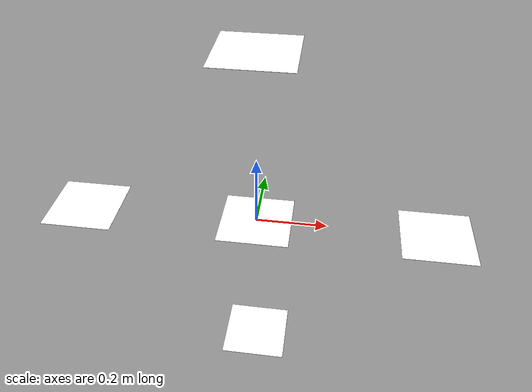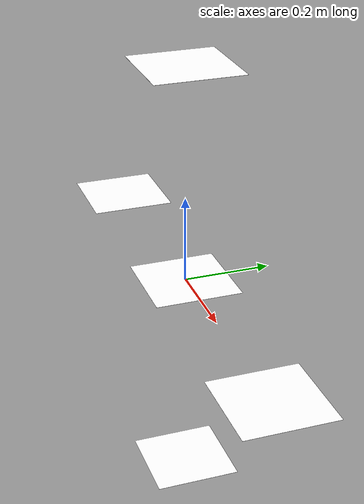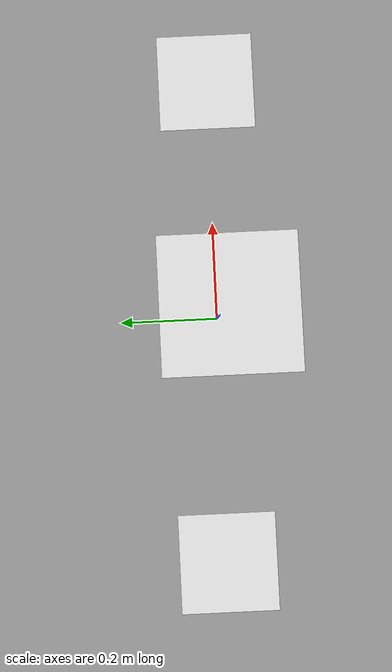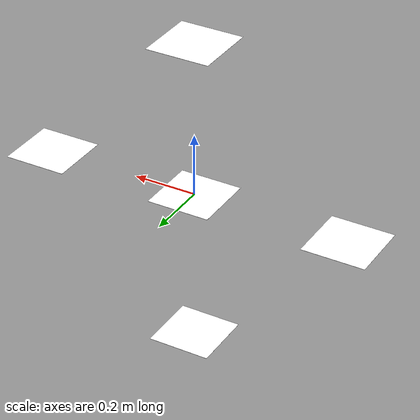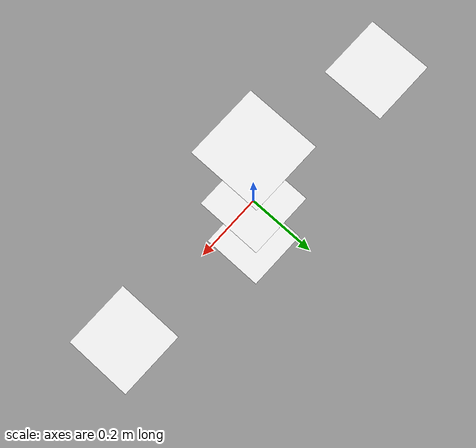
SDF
<?xml version="1.0" ?>
<sdf version="1.8">
  <world name="my_world">
    <plugin filename="gz-sim-physics-system" name="gz::sim::systems::Physics"/>
    <plugin filename="gz-sim-scene-broadcaster-system" name="gz::sim::systems::SceneBroadcaster"/>
    <!-- Inline copy of models/aruco_marker/model.sdf for quick viewing -->
    <model name="aruco_marker">
      <static>true</static>

      <link name="marker_0">
        <visual name="visual">
          <geometry>
            <plane>
              <size>0.2 0.2</size>
            </plane>
          </geometry>
          <material>
            <diffuse>1 1 1 1</diffuse>
            <pbr>
              <metal>
                <albedo_map>file:///root/ros_ws/drone/src/drone_bringup/models/aruco_marker/materials/textures/marker_0.png</albedo_map>
              </metal>
            </pbr>
          </material>
        </visual>
        <pose>0 0 0 0 0 0</pose>
      </link>

      <link name="marker_2">
        <visual name="visual">
          <geometry>
            <plane>
              <size>0.2 0.2</size>
            </plane>
          </geometry>
          <material>
            <diffuse>1 1 1 1</diffuse>
            <pbr>
              <metal>
                <albedo_map>file:///root/ros_ws/drone/src/drone_bringup/models/aruco_marker/materials/textures/marker_2.png</albedo_map>
              </metal>
            </pbr>
          </material>
        </visual>
        <pose>-0.5 0 0 0 0 0</pose>
      </link>

      <link name="marker_3">
        <visual name="visual">
          <geometry>
            <plane>
              <size>0.2 0.2</size>
            </plane>
          </geometry>
          <material>
            <diffuse>1 1 1 1</diffuse>
            <pbr>
              <metal>
                <albedo_map>file:///root/ros_ws/drone/src/drone_bringup/models/aruco_marker/materials/textures/marker_3.png</albedo_map>
              </metal>
            </pbr>
          </material>
        </visual>
        <pose>0 0 0.5 0 0 0</pose>
      </link>

      <link name="marker_4">
        <visual name="visual">
          <geometry>
            <plane>
              <size>0.2 0.2</size>
            </plane>
          </geometry>
          <material>
            <diffuse>1 1 1 1</diffuse>
            <pbr>
              <metal>
                <albedo_map>file:///root/ros_ws/drone/src/drone_bringup/models/aruco_marker/materials/textures/marker_4.png</albedo_map>
              </metal>
            </pbr>
          </material>
        </visual>
        <pose>0 0 -0.5 0 0 0</pose>
      </link>

      <link name="marker_1">
        <visual name="visual">
          <geometry>
            <plane>
              <size>0.2 0.2</size>
            </plane>
          </geometry>
          <material>
            <diffuse>1 1 1 1</diffuse>
            <pbr>
              <metal>
                <albedo_map>file:///root/ros_ws/drone/src/drone_bringup/models/aruco_marker/materials/textures/marker_1.png</albedo_map>
              </metal>
            </pbr>
          </material>
        </visual>
        <pose>0.5 0 0 0 0 0</pose>
      </link>
    </model>
  </world>
</sdf>
